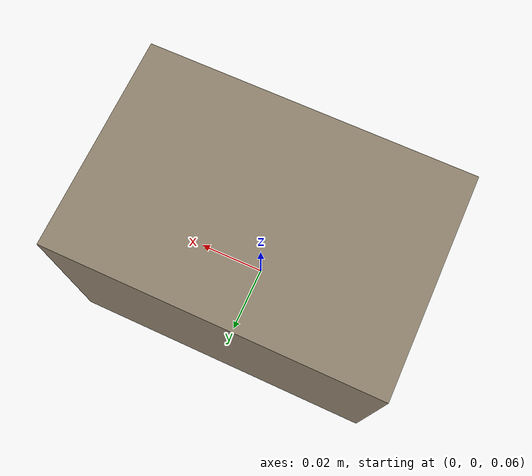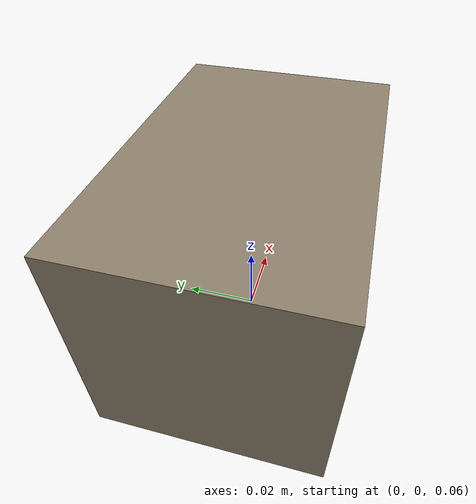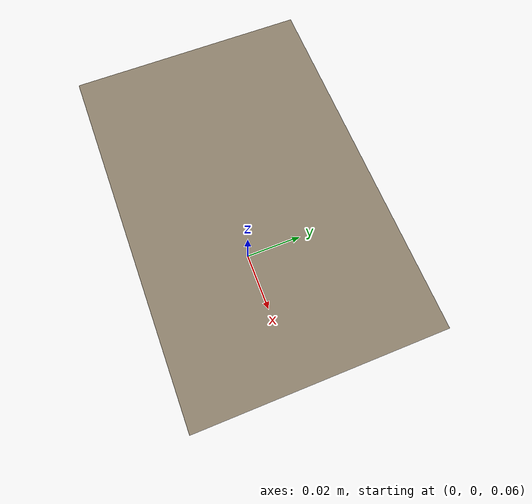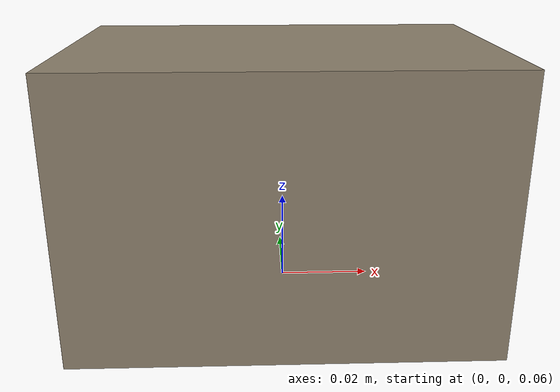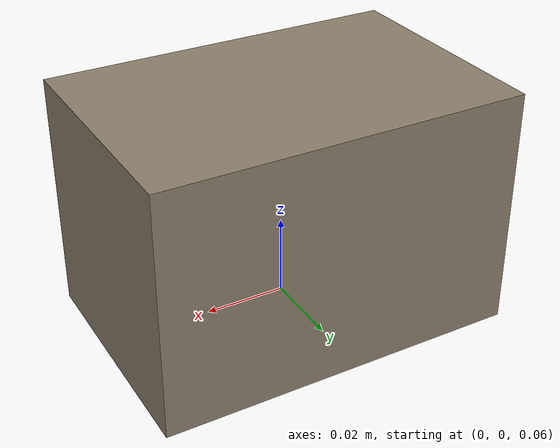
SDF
<?xml version="1.0"?>
<sdf version="1.9">
  <model name="room315_vla_payload_small_box">
    <static>false</static>
    <link name="payload_link">
      <kinematic>true</kinematic>
      <gravity>false</gravity>
      <visual name="small_box_body">
        <pose>0 0 0.085 0 0 0</pose>
        <geometry><box><size>0.090 0.060 0.060</size></box></geometry>
        <material><ambient>0.55 0.50 0.42 1</ambient><diffuse>0.55 0.50 0.42 1</diffuse><specular>0.08 0.08 0.08 1</specular></material>
      </visual>
      <collision name="small_box_collision">
        <pose>0 0 0.085 0 0 0</pose>
        <geometry><box><size>0.090 0.060 0.060</size></box></geometry>
        <surface><contact><collide_bitmask>0x0000</collide_bitmask></contact></surface>
      </collision>
    </link>
  </model>
</sdf>
